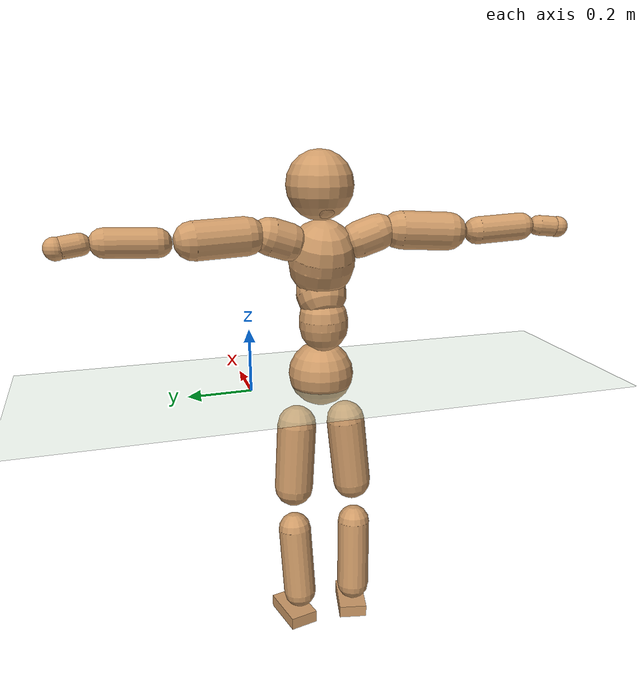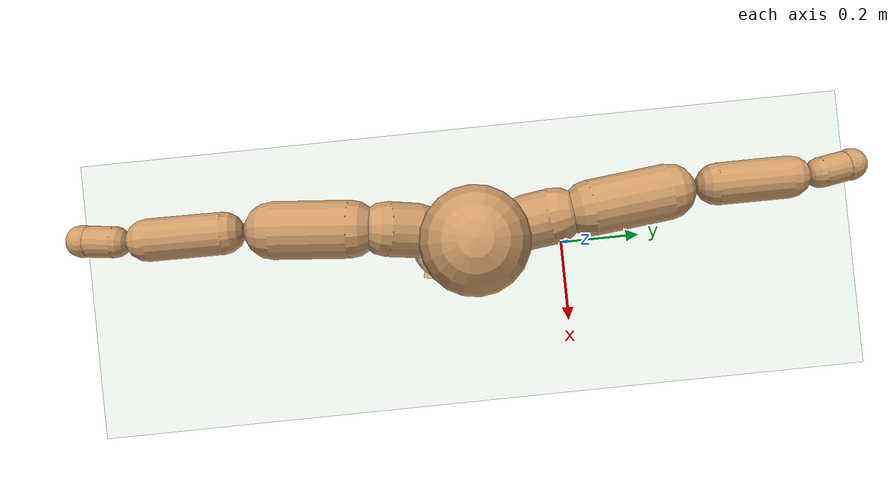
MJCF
<mujoco model="humanoid">
  <compiler coordinate="local"/>
  <default>
    <joint damping="0.0" armature="0.01" stiffness="0.0" limited="true"/>
    <geom conaffinity="1" condim="3" contype="7" margin="0.001" rgba="0.8 0.6 .4 1"/>
  </default>
  <asset>
    <texture type="skybox" builtin="gradient" rgb1=".4 .5 .6" rgb2="0 0 0" width="100" height="100"/>
    <texture builtin="flat" height="1278" mark="cross" markrgb="1 1 1" name="texgeom" random="0.01" rgb1="0.8 0.6 0.4" rgb2="0.8 0.6 0.4" type="cube" width="127"/>
    <texture builtin="checker" height="100" name="texplane" rgb1="0 0 0" rgb2="0.8 0.8 0.8" type="2d" width="100"/>
    <material name="MatPlane" reflectance="0.5" shininess="1" specular="1" texrepeat="60 60" texture="texplane"/>
    <material name="geom" texture="texgeom" texuniform="true"/>
  </asset>
  <worldbody>
    <light cutoff="100" diffuse="1 1 1" dir="-0 0 -1.3" directional="true" exponent="1" pos="0 0 1.3" specular=".1 .1 .1"/>
    <geom conaffinity="1" condim="3" name="floor" pos="0 0 0" rgba="0.8 0.9 0.8 1" size="100 100 .2" type="plane" material="MatPlane"/>
    <body name="Pelvis" pos="0.0002 -0.2308 0.038">
      <freejoint name="Pelvis"/>
      <geom type="sphere" contype="1" conaffinity="1" density="500" size="0.1046" pos="0.0000 0.0000 0.0000" name="Pelvis"/>
      <body name="L_Hip" pos="-0.0034 0.08 -0.0964">
        <joint name="L_Hip_x" type="hinge" pos="0 0 0" axis="1 0 0" stiffness="800" damping="80" armature="0.02" range="-180.0000 180.0000"/>
        <joint name="L_Hip_y" type="hinge" pos="0 0 0" axis="0 1 0" stiffness="800" damping="80" armature="0.02" range="-180.0000 180.0000"/>
        <joint name="L_Hip_z" type="hinge" pos="0 0 0" axis="0 0 1" stiffness="800" damping="80" armature="0.02" range="-180.0000 180.0000"/>
        <geom type="capsule" contype="1" conaffinity="1" density="500" fromto="-0.0032 0.0054 -0.0743 -0.0129 0.0217 -0.2973" size="0.0642" name="L_Hip"/>
        <body name="L_Knee" pos="-0.0161 0.0271 -0.3716">
          <joint name="L_Knee_x" type="hinge" pos="0 0 0" axis="1 0 0" stiffness="800" damping="80" armature="0.02" range="-180.0000 180.0000"/>
          <joint name="L_Knee_y" type="hinge" pos="0 0 0" axis="0 1 0" stiffness="800" damping="80" armature="0.02" range="-180.0000 180.0000"/>
          <joint name="L_Knee_z" type="hinge" pos="0 0 0" axis="0 0 1" stiffness="800" damping="80" armature="0.02" range="-180.0000 180.0000"/>
          <geom type="capsule" contype="1" conaffinity="1" density="500" fromto="-0.0096 -0.0024 -0.0796 -0.0385 -0.0095 -0.3184" size="0.055" name="L_Knee"/>
          <body name="L_Ankle" pos="-0.0481 -0.0119 -0.398">
            <joint name="L_Ankle_x" type="hinge" pos="0 0 0" axis="1 0 0" stiffness="800" damping="80" armature="0.02" range="-180.0000 180.0000"/>
            <joint name="L_Ankle_y" type="hinge" pos="0 0 0" axis="0 1 0" stiffness="800" damping="80" armature="0.02" range="-180.0000 180.0000"/>
            <joint name="L_Ankle_z" type="hinge" pos="0 0 0" axis="0 0 1" stiffness="800" damping="80" armature="0.02" range="-180.0000 180.0000"/>
            <geom type="box" contype="1" conaffinity="1" density="500" pos="0.0576 0.0129 -0.0286" size="0.0807 0.0478 0.0219" quat="0.9939 0.0000 0.0000 0.1099" name="L_Ankle"/>
            <body name="L_Toe" pos="0.1152 0.0258 -0.0573">
              <joint name="L_Toe_x" type="hinge" pos="0 0 0" axis="1 0 0" stiffness="500" damping="50" armature="0.02" range="-180.0000 180.0000"/>
              <joint name="L_Toe_y" type="hinge" pos="0 0 0" axis="0 1 0" stiffness="500" damping="50" armature="0.02" range="-180.0000 180.0000"/>
              <joint name="L_Toe_z" type="hinge" pos="0 0 0" axis="0 0 1" stiffness="500" damping="50" armature="0.02" range="-180.0000 180.0000"/>
              <geom type="box" contype="1" conaffinity="1" density="500" pos="0.0000 0.0000 0.0282" size="0.001 0.0024 0.0011" quat="0.9932 0.0000 0.0000 0.1161" name="L_Toe"/>
            </body>
          </body>
        </body>
      </body>
      <body name="R_Hip" pos="0.0006 -0.0772 -0.0971">
        <joint name="R_Hip_x" type="hinge" pos="0 0 0" axis="1 0 0" stiffness="800" damping="80" armature="0.02" range="-180.0000 180.0000"/>
        <joint name="R_Hip_y" type="hinge" pos="0 0 0" axis="0 1 0" stiffness="800" damping="80" armature="0.02" range="-180.0000 180.0000"/>
        <joint name="R_Hip_z" type="hinge" pos="0 0 0" axis="0 0 1" stiffness="800" damping="80" armature="0.02" range="-180.0000 180.0000"/>
        <geom type="capsule" contype="1" conaffinity="1" density="500" fromto="-0.0035 -0.0071 -0.0757 -0.0139 -0.0284 -0.3027" size="0.0634" name="R_Hip"/>
        <body name="R_Knee" pos="-0.0174 -0.0355 -0.3783">
          <joint name="R_Knee_x" type="hinge" pos="0 0 0" axis="1 0 0" stiffness="800" damping="80" armature="0.02" range="-180.0000 180.0000"/>
          <joint name="R_Knee_y" type="hinge" pos="0 0 0" axis="0 1 0" stiffness="800" damping="80" armature="0.02" range="-180.0000 180.0000"/>
          <joint name="R_Knee_z" type="hinge" pos="0 0 0" axis="0 0 1" stiffness="800" damping="80" armature="0.02" range="-180.0000 180.0000"/>
          <geom type="capsule" contype="1" conaffinity="1" density="500" fromto="-0.0091 0.0030 -0.0800 -0.0363 0.0119 -0.3201" size="0.0552" name="R_Knee"/>
          <body name="R_Ankle" pos="-0.0454 0.0149 -0.4002">
            <joint name="R_Ankle_x" type="hinge" pos="0 0 0" axis="1 0 0" stiffness="800" damping="80" armature="0.02" range="-180.0000 180.0000"/>
            <joint name="R_Ankle_y" type="hinge" pos="0 0 0" axis="0 1 0" stiffness="800" damping="80" armature="0.02" range="-180.0000 180.0000"/>
            <joint name="R_Ankle_z" type="hinge" pos="0 0 0" axis="0 0 1" stiffness="800" damping="80" armature="0.02" range="-180.0000 180.0000"/>
            <geom type="box" contype="1" conaffinity="1" density="500" pos="0.0600 -0.0123 -0.0252" size="0.0833 0.0479 0.0215" quat="0.9949 0.0000 0.0000 -0.1013" name="R_Ankle"/>
            <body name="R_Toe" pos="0.1199 -0.0247 -0.0503">
              <joint name="R_Toe_x" type="hinge" pos="0 0 0" axis="1 0 0" stiffness="500" damping="50" armature="0.02" range="-180.0000 180.0000"/>
              <joint name="R_Toe_y" type="hinge" pos="0 0 0" axis="0 1 0" stiffness="500" damping="50" armature="0.02" range="-180.0000 180.0000"/>
              <joint name="R_Toe_z" type="hinge" pos="0 0 0" axis="0 0 1" stiffness="500" damping="50" armature="0.02" range="-180.0000 180.0000"/>
              <geom type="box" contype="1" conaffinity="1" density="500" pos="0.0000 0.0000 0.0266" size="0.001 0.0024 0.0011" quat="0.9958 0.0000 0.0000 -0.0918" name="R_Toe"/>
            </body>
          </body>
        </body>
      </body>
      <body name="Torso" pos="-0.0296 -0.0021 0.1115">
        <joint name="Torso_x" type="hinge" pos="0 0 0" axis="1 0 0" stiffness="1000" damping="100" armature="0.02" range="-180.0000 180.0000"/>
        <joint name="Torso_y" type="hinge" pos="0 0 0" axis="0 1 0" stiffness="1000" damping="100" armature="0.02" range="-180.0000 180.0000"/>
        <joint name="Torso_z" type="hinge" pos="0 0 0" axis="0 0 1" stiffness="1000" damping="100" armature="0.02" range="-180.0000 180.0000"/>
        <geom type="capsule" contype="1" conaffinity="1" density="500" fromto="-0.0010 0.0020 0.0774 -0.0007 0.0013 0.0516" size="0.076818" name="Torso"/>
        <body name="Spine" pos="-0.0016 0.0033 0.129">
          <joint name="Spine_x" type="hinge" pos="0 0 0" axis="1 0 0" stiffness="1000" damping="100" armature="0.02" range="-180.0000 180.0000"/>
          <joint name="Spine_y" type="hinge" pos="0 0 0" axis="0 1 0" stiffness="1000" damping="100" armature="0.02" range="-180.0000 180.0000"/>
          <joint name="Spine_z" type="hinge" pos="0 0 0" axis="0 0 1" stiffness="1000" damping="100" armature="0.02" range="-180.0000 180.0000"/>
          <geom type="capsule" contype="1" conaffinity="1" density="500" fromto="0.0203 0.0010 0.0317 0.0135 0.0007 0.0211" size="0.078213" name="Spine"/>
          <body name="Chest" pos="0.0338 0.0017 0.0528">
            <joint name="Chest_x" type="hinge" pos="0 0 0" axis="1 0 0" stiffness="1000" damping="100" armature="0.02" range="-180.0000 180.0000"/>
            <joint name="Chest_y" type="hinge" pos="0 0 0" axis="0 1 0" stiffness="1000" damping="100" armature="0.02" range="-180.0000 180.0000"/>
            <joint name="Chest_z" type="hinge" pos="0 0 0" axis="0 0 1" stiffness="1000" damping="100" armature="0.02" range="-180.0000 180.0000"/>
            <geom type="capsule" contype="1" conaffinity="1" density="500" fromto="-0.0316 -0.0005 0.0988 -0.0211 -0.0003 0.0658" size="0.102114" name="Chest"/>
            <body name="Neck" pos="-0.0667 -0.0008 0.232">
              <joint name="Neck_x" type="hinge" pos="0 0 0" axis="1 0 0" stiffness="500" damping="50" armature="0.02" range="-180.0000 180.0000"/>
              <joint name="Neck_y" type="hinge" pos="0 0 0" axis="0 1 0" stiffness="500" damping="50" armature="0.02" range="-180.0000 180.0000"/>
              <joint name="Neck_z" type="hinge" pos="0 0 0" axis="0 0 1" stiffness="500" damping="50" armature="0.02" range="-180.0000 180.0000"/>
              <geom type="capsule" contype="1" conaffinity="1" density="500" fromto="0.0101 0.0005 0.0127 0.0404 0.0019 0.0507" size="0.041385" name="Neck"/>
              <body name="Head" pos="0.0505 0.0024 0.0634">
                <joint name="Head_x" type="hinge" pos="0 0 0" axis="1 0 0" stiffness="500" damping="50" armature="0.02" range="-180.0000 180.0000"/>
                <joint name="Head_y" type="hinge" pos="0 0 0" axis="0 1 0" stiffness="500" damping="50" armature="0.02" range="-180.0000 180.0000"/>
                <joint name="Head_z" type="hinge" pos="0 0 0" axis="0 0 1" stiffness="500" damping="50" armature="0.02" range="-180.0000 180.0000"/>
                <geom type="sphere" contype="1" conaffinity="1" density="500" size="0.1021" pos="0.0000 0.0000 0.0000" name="Head"/>
              </body>
            </body>
            <body name="L_Thorax" pos="-0.0428 0.0883 0.1322">
              <joint name="L_Thorax_x" type="hinge" pos="0 0 0" axis="1 0 0" stiffness="500" damping="50" armature="0.02" range="-180.0000 180.0000"/>
              <joint name="L_Thorax_y" type="hinge" pos="0 0 0" axis="0 1 0" stiffness="500" damping="50" armature="0.02" range="-180.0000 180.0000"/>
              <joint name="L_Thorax_z" type="hinge" pos="0 0 0" axis="0 0 1" stiffness="500" damping="50" armature="0.02" range="-180.0000 180.0000"/>
              <geom type="capsule" contype="1" conaffinity="1" density="500" fromto="-0.0023 0.0189 0.0064 -0.0092 0.0758 0.0256" size="0.0561" name="L_Thorax"/>
              <body name="L_Shoulder" pos="-0.0116 0.0947 0.032">
                <joint name="L_Shoulder_x" type="hinge" pos="0 0 0" axis="1 0 0" stiffness="500" damping="50" armature="0.02" range="-720.0000 720.0000"/>
                <joint name="L_Shoulder_y" type="hinge" pos="0 0 0" axis="0 1 0" stiffness="500" damping="50" armature="0.02" range="-720.0000 720.0000"/>
                <joint name="L_Shoulder_z" type="hinge" pos="0 0 0" axis="0 0 1" stiffness="500" damping="50" armature="0.02" range="-720.0000 720.0000"/>
                <geom type="capsule" contype="1" conaffinity="1" density="500" fromto="-0.0055 0.0515 -0.0015 -0.0220 0.2059 -0.0060" size="0.0561" name="L_Shoulder"/>
                <body name="L_Elbow" pos="-0.0275 0.2574 -0.0075">
                  <joint name="L_Elbow_x" type="hinge" pos="0 0 0" axis="1 0 0" stiffness="500" damping="50" armature="0.02" range="-720.0000 720.0000"/>
                  <joint name="L_Elbow_y" type="hinge" pos="0 0 0" axis="0 1 0" stiffness="500" damping="50" armature="0.02" range="-720.0000 720.0000"/>
                  <joint name="L_Elbow_z" type="hinge" pos="0 0 0" axis="0 0 1" stiffness="500" damping="50" armature="0.02" range="-720.0000 720.0000"/>
                  <geom type="capsule" contype="1" conaffinity="1" density="500" fromto="0.0002 0.0468 0.0018 0.0008 0.1872 0.0072" size="0.0418" name="L_Elbow"/>
                  <body name="L_Wrist" pos="0.001 0.2341 0.009">
                    <joint name="L_Wrist_x" type="hinge" pos="0 0 0" axis="1 0 0" stiffness="300" damping="30" armature="0.02" range="-180.0000 180.0000"/>
                    <joint name="L_Wrist_y" type="hinge" pos="0 0 0" axis="0 1 0" stiffness="300" damping="30" armature="0.02" range="-180.0000 180.0000"/>
                    <joint name="L_Wrist_z" type="hinge" pos="0 0 0" axis="0 0 1" stiffness="300" damping="30" armature="0.02" range="-180.0000 180.0000"/>
                    <geom type="capsule" contype="1" conaffinity="1" density="500" fromto="-0.0025 0.0158 -0.0019 -0.0102 0.0631 -0.0075" size="0.0305" name="L_Wrist"/>
                    <body name="L_Hand" pos="-0.0127 0.0789 -0.0093">
                      <joint name="L_Hand_x" type="hinge" pos="0 0 0" axis="1 0 0" stiffness="300" damping="30" armature="0.02" range="-180.0000 180.0000"/>
                      <joint name="L_Hand_y" type="hinge" pos="0 0 0" axis="0 1 0" stiffness="300" damping="30" armature="0.02" range="-180.0000 180.0000"/>
                      <joint name="L_Hand_z" type="hinge" pos="0 0 0" axis="0 0 1" stiffness="300" damping="30" armature="0.02" range="-180.0000 180.0000"/>
                      <geom type="sphere" contype="1" conaffinity="1" density="500" size="0.0319" pos="0.0000 0.0000 0.0000" name="L_Hand"/>
                    </body>
                  </body>
                </body>
              </body>
            </body>
            <body name="R_Thorax" pos="-0.0485 -0.0897 0.1295">
              <joint name="R_Thorax_x" type="hinge" pos="0 0 0" axis="1 0 0" stiffness="500" damping="50" armature="0.02" range="-180.0000 180.0000"/>
              <joint name="R_Thorax_y" type="hinge" pos="0 0 0" axis="0 1 0" stiffness="500" damping="50" armature="0.02" range="-180.0000 180.0000"/>
              <joint name="R_Thorax_z" type="hinge" pos="0 0 0" axis="0 0 1" stiffness="500" damping="50" armature="0.02" range="-180.0000 180.0000"/>
              <geom type="capsule" contype="1" conaffinity="1" density="500" fromto="-0.0027 -0.0195 0.0072 -0.0108 -0.0781 0.0286" size="0.0551" name="R_Thorax"/>
              <body name="R_Shoulder" pos="-0.0135 -0.0976 0.0358">
                <joint name="R_Shoulder_x" type="hinge" pos="0 0 0" axis="1 0 0" stiffness="500" damping="50" armature="0.02" range="-720.0000 720.0000"/>
                <joint name="R_Shoulder_y" type="hinge" pos="0 0 0" axis="0 1 0" stiffness="500" damping="50" armature="0.02" range="-720.0000 720.0000"/>
                <joint name="R_Shoulder_z" type="hinge" pos="0 0 0" axis="0 0 1" stiffness="500" damping="50" armature="0.02" range="-720.0000 720.0000"/>
                <geom type="capsule" contype="1" conaffinity="1" density="500" fromto="-0.0043 -0.0506 -0.0029 -0.0172 -0.2024 -0.0115" size="0.058" name="R_Shoulder"/>
                <body name="R_Elbow" pos="-0.0215 -0.2529 -0.0144">
                  <joint name="R_Elbow_x" type="hinge" pos="0 0 0" axis="1 0 0" stiffness="500" damping="50" armature="0.02" range="-720.0000 720.0000"/>
                  <joint name="R_Elbow_y" type="hinge" pos="0 0 0" axis="0 1 0" stiffness="500" damping="50" armature="0.02" range="-720.0000 720.0000"/>
                  <joint name="R_Elbow_z" type="hinge" pos="0 0 0" axis="0 0 1" stiffness="500" damping="50" armature="0.02" range="-720.0000 720.0000"/>
                  <geom type="capsule" contype="1" conaffinity="1" density="500" fromto="-0.0004 -0.0489 0.0023 -0.0015 -0.1956 0.0092" size="0.0424" name="R_Elbow"/>
                  <body name="R_Wrist" pos="-0.0019 -0.2444 0.0115">
                    <joint name="R_Wrist_x" type="hinge" pos="0 0 0" axis="1 0 0" stiffness="300" damping="30" armature="0.02" range="-180.0000 180.0000"/>
                    <joint name="R_Wrist_y" type="hinge" pos="0 0 0" axis="0 1 0" stiffness="300" damping="30" armature="0.02" range="-180.0000 180.0000"/>
                    <joint name="R_Wrist_z" type="hinge" pos="0 0 0" axis="0 0 1" stiffness="300" damping="30" armature="0.02" range="-180.0000 180.0000"/>
                    <geom type="capsule" contype="1" conaffinity="1" density="500" fromto="-0.0021 -0.0161 -0.0014 -0.0083 -0.0644 -0.0057" size="0.0314" name="R_Wrist"/>
                    <body name="R_Hand" pos="-0.0104 -0.0805 -0.0072">
                      <joint name="R_Hand_x" type="hinge" pos="0 0 0" axis="1 0 0" stiffness="300" damping="30" armature="0.02" range="-180.0000 180.0000"/>
                      <joint name="R_Hand_y" type="hinge" pos="0 0 0" axis="0 1 0" stiffness="300" damping="30" armature="0.02" range="-180.0000 180.0000"/>
                      <joint name="R_Hand_z" type="hinge" pos="0 0 0" axis="0 0 1" stiffness="300" damping="30" armature="0.02" range="-180.0000 180.0000"/>
                      <geom type="sphere" contype="1" conaffinity="1" density="500" size="0.0325" pos="0.0000 0.0000 0.0000" name="R_Hand"/>
                    </body>
                  </body>
                </body>
              </body>
            </body>
          </body>
        </body>
      </body>
    </body>
  </worldbody>
  <actuator>
    <motor name="L_Hip_x" joint="L_Hip_x" gear="500"/>
    <motor name="L_Hip_y" joint="L_Hip_y" gear="500"/>
    <motor name="L_Hip_z" joint="L_Hip_z" gear="500"/>
    <motor name="L_Knee_x" joint="L_Knee_x" gear="500"/>
    <motor name="L_Knee_y" joint="L_Knee_y" gear="500"/>
    <motor name="L_Knee_z" joint="L_Knee_z" gear="500"/>
    <motor name="L_Ankle_x" joint="L_Ankle_x" gear="500"/>
    <motor name="L_Ankle_y" joint="L_Ankle_y" gear="500"/>
    <motor name="L_Ankle_z" joint="L_Ankle_z" gear="500"/>
    <motor name="L_Toe_x" joint="L_Toe_x" gear="500"/>
    <motor name="L_Toe_y" joint="L_Toe_y" gear="500"/>
    <motor name="L_Toe_z" joint="L_Toe_z" gear="500"/>
    <motor name="R_Hip_x" joint="R_Hip_x" gear="500"/>
    <motor name="R_Hip_y" joint="R_Hip_y" gear="500"/>
    <motor name="R_Hip_z" joint="R_Hip_z" gear="500"/>
    <motor name="R_Knee_x" joint="R_Knee_x" gear="500"/>
    <motor name="R_Knee_y" joint="R_Knee_y" gear="500"/>
    <motor name="R_Knee_z" joint="R_Knee_z" gear="500"/>
    <motor name="R_Ankle_x" joint="R_Ankle_x" gear="500"/>
    <motor name="R_Ankle_y" joint="R_Ankle_y" gear="500"/>
    <motor name="R_Ankle_z" joint="R_Ankle_z" gear="500"/>
    <motor name="R_Toe_x" joint="R_Toe_x" gear="500"/>
    <motor name="R_Toe_y" joint="R_Toe_y" gear="500"/>
    <motor name="R_Toe_z" joint="R_Toe_z" gear="500"/>
    <motor name="Torso_x" joint="Torso_x" gear="500"/>
    <motor name="Torso_y" joint="Torso_y" gear="500"/>
    <motor name="Torso_z" joint="Torso_z" gear="500"/>
    <motor name="Spine_x" joint="Spine_x" gear="500"/>
    <motor name="Spine_y" joint="Spine_y" gear="500"/>
    <motor name="Spine_z" joint="Spine_z" gear="500"/>
    <motor name="Chest_x" joint="Chest_x" gear="500"/>
    <motor name="Chest_y" joint="Chest_y" gear="500"/>
    <motor name="Chest_z" joint="Chest_z" gear="500"/>
    <motor name="Neck_x" joint="Neck_x" gear="500"/>
    <motor name="Neck_y" joint="Neck_y" gear="500"/>
    <motor name="Neck_z" joint="Neck_z" gear="500"/>
    <motor name="Head_x" joint="Head_x" gear="500"/>
    <motor name="Head_y" joint="Head_y" gear="500"/>
    <motor name="Head_z" joint="Head_z" gear="500"/>
    <motor name="L_Thorax_x" joint="L_Thorax_x" gear="500"/>
    <motor name="L_Thorax_y" joint="L_Thorax_y" gear="500"/>
    <motor name="L_Thorax_z" joint="L_Thorax_z" gear="500"/>
    <motor name="L_Shoulder_x" joint="L_Shoulder_x" gear="500"/>
    <motor name="L_Shoulder_y" joint="L_Shoulder_y" gear="500"/>
    <motor name="L_Shoulder_z" joint="L_Shoulder_z" gear="500"/>
    <motor name="L_Elbow_x" joint="L_Elbow_x" gear="500"/>
    <motor name="L_Elbow_y" joint="L_Elbow_y" gear="500"/>
    <motor name="L_Elbow_z" joint="L_Elbow_z" gear="500"/>
    <motor name="L_Wrist_x" joint="L_Wrist_x" gear="500"/>
    <motor name="L_Wrist_y" joint="L_Wrist_y" gear="500"/>
    <motor name="L_Wrist_z" joint="L_Wrist_z" gear="500"/>
    <motor name="L_Hand_x" joint="L_Hand_x" gear="500"/>
    <motor name="L_Hand_y" joint="L_Hand_y" gear="500"/>
    <motor name="L_Hand_z" joint="L_Hand_z" gear="500"/>
    <motor name="R_Thorax_x" joint="R_Thorax_x" gear="500"/>
    <motor name="R_Thorax_y" joint="R_Thorax_y" gear="500"/>
    <motor name="R_Thorax_z" joint="R_Thorax_z" gear="500"/>
    <motor name="R_Shoulder_x" joint="R_Shoulder_x" gear="500"/>
    <motor name="R_Shoulder_y" joint="R_Shoulder_y" gear="500"/>
    <motor name="R_Shoulder_z" joint="R_Shoulder_z" gear="500"/>
    <motor name="R_Elbow_x" joint="R_Elbow_x" gear="500"/>
    <motor name="R_Elbow_y" joint="R_Elbow_y" gear="500"/>
    <motor name="R_Elbow_z" joint="R_Elbow_z" gear="500"/>
    <motor name="R_Wrist_x" joint="R_Wrist_x" gear="500"/>
    <motor name="R_Wrist_y" joint="R_Wrist_y" gear="500"/>
    <motor name="R_Wrist_z" joint="R_Wrist_z" gear="500"/>
    <motor name="R_Hand_x" joint="R_Hand_x" gear="500"/>
    <motor name="R_Hand_y" joint="R_Hand_y" gear="500"/>
    <motor name="R_Hand_z" joint="R_Hand_z" gear="500"/>
  </actuator>
  <contact>
    <exclude body1="Torso" body2="Chest"/>
    <exclude body1="Head" body2="Chest"/>
    <exclude body1="R_Knee" body2="R_Toe"/>
    <exclude body1="R_Knee" body2="L_Ankle"/>
    <exclude body1="R_Knee" body2="L_Toe"/>
    <exclude body1="L_Knee" body2="L_Toe"/>
    <exclude body1="L_Knee" body2="R_Ankle"/>
    <exclude body1="L_Knee" body2="R_Toe"/>
    <exclude body1="L_Shoulder" body2="Chest"/>
    <exclude body1="R_Shoulder" body2="Chest"/>
  </contact>
  <sensor/>
  <size njmax="700" nconmax="700"/>
</mujoco>
